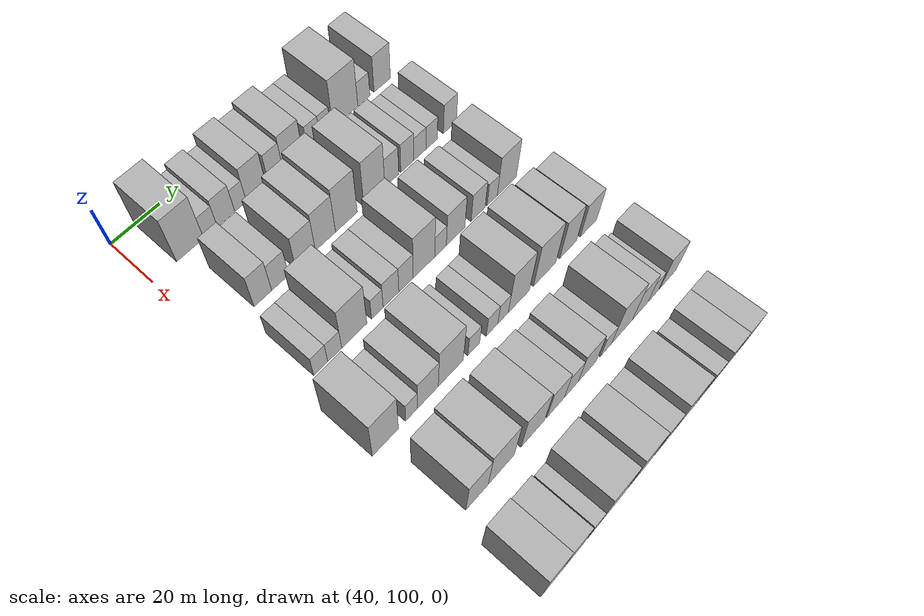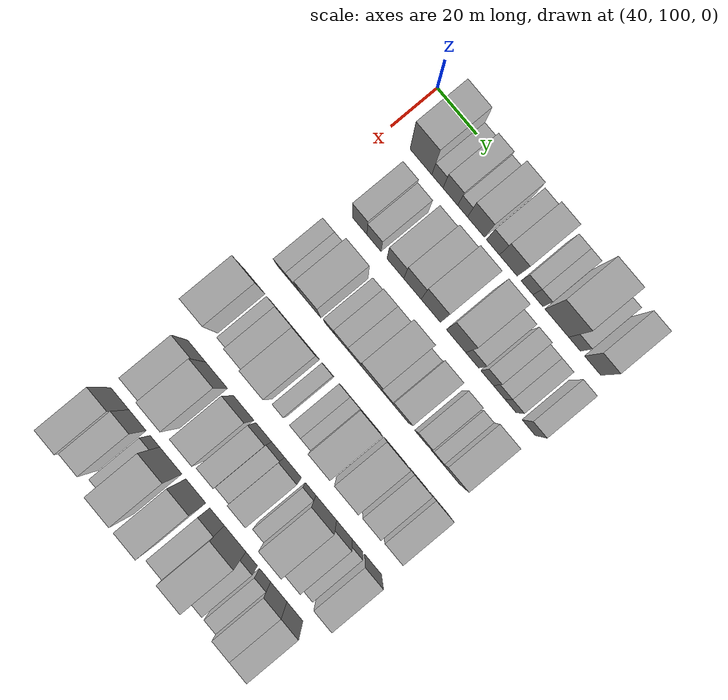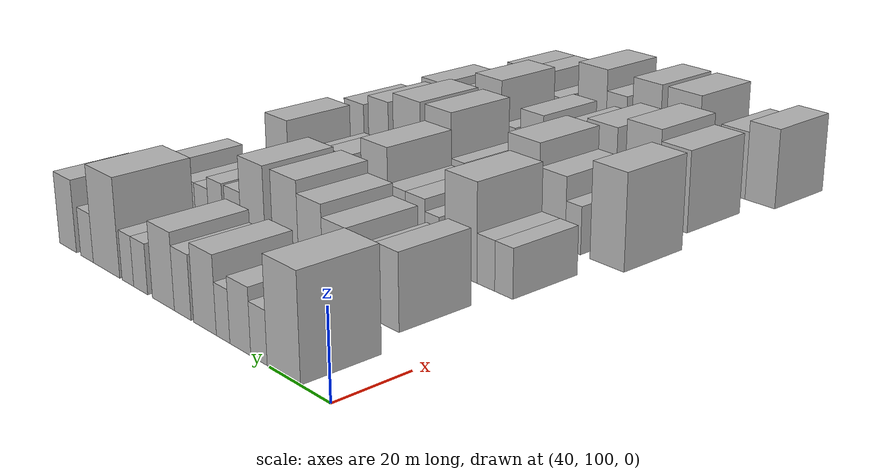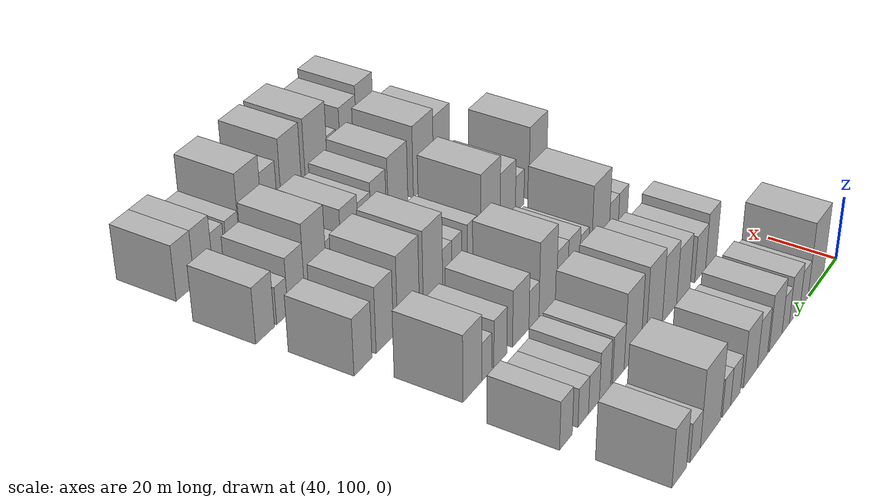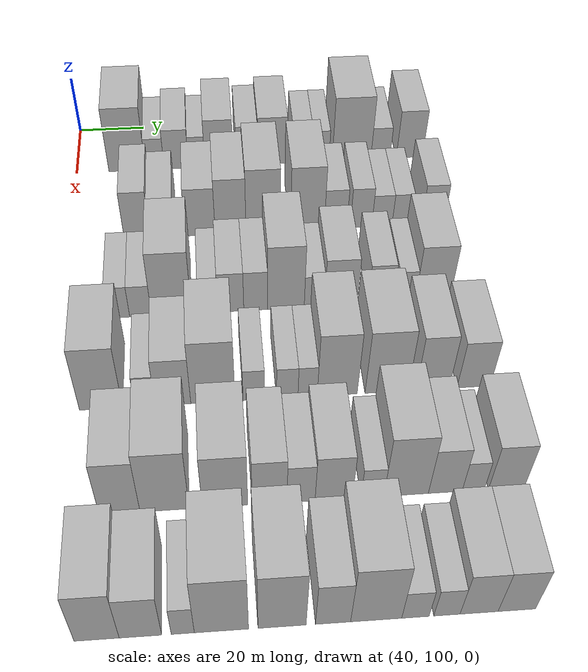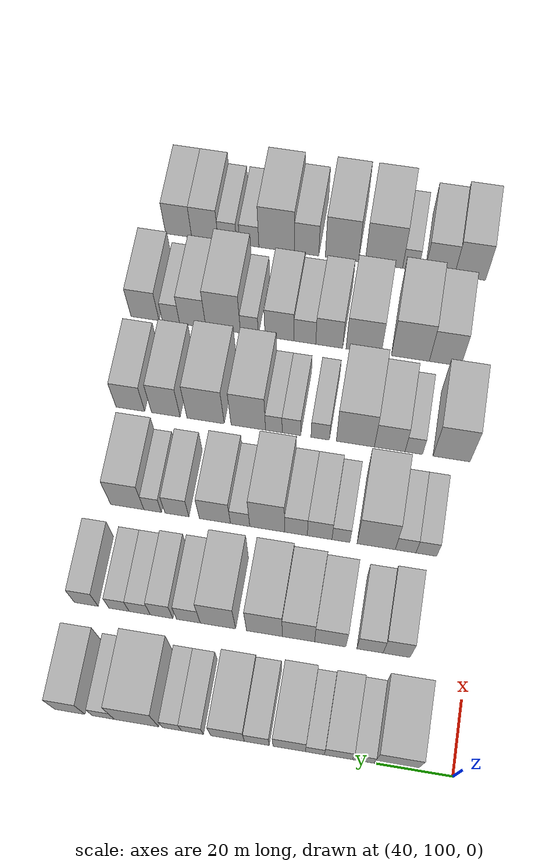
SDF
<sdf version="1.6">
 <world name="default">
  <model name="building_71">
   <static>1</static>
   <pose>50.0000 115.2346 0 0.000000 0.000000 0.000000</pose>
   <link name="link">
    <pose>0 0 12.00 0 0 0</pose>
    <collision name="collision"><geometry><box><size>20.0000 11.1238 24.0000</size></box></geometry></collision>
    <visual name="visual">
     <cast_shadows>0</cast_shadows>
     <geometry><box><size>20.0000 11.1238 24.0000</size></box></geometry>
     <material>
      <script>
       <uri>model://HANNAS_wall/materials/scripts</uri>
       <uri>model://HANNAS_wall/materials/textures</uri>
       <name>vrc/HANNAS_wall</name>
      </script>
     </material>
    </visual>
   </link>
  </model>
  <model name="building_72">
   <static>1</static>
   <pose>50.0000 123.6524 0 0.000000 0.000000 0.000000</pose>
   <link name="link">
    <pose>0 0 6.00 0 0 0</pose>
    <collision name="collision"><geometry><box><size>20.0000 5.7118 12.0000</size></box></geometry></collision>
    <visual name="visual">
     <cast_shadows>0</cast_shadows>
     <geometry><box><size>20.0000 5.7118 12.0000</size></box></geometry>
     <material>
      <script>
       <uri>model://HANNAS_wall/materials/scripts</uri>
       <uri>model://HANNAS_wall/materials/textures</uri>
       <name>vrc/HANNAS_wall</name>
      </script>
     </material>
    </visual>
   </link>
  </model>
  <model name="building_73">
   <static>1</static>
   <pose>50.0000 130.2465 0 0.000000 0.000000 0.000000</pose>
   <link name="link">
    <pose>0 0 7.50 0 0 0</pose>
    <collision name="collision"><geometry><box><size>20.0000 7.4764 15.0000</size></box></geometry></collision>
    <visual name="visual">
     <cast_shadows>0</cast_shadows>
     <geometry><box><size>20.0000 7.4764 15.0000</size></box></geometry>
     <material>
      <script>
       <uri>model://HANNAS_wall/materials/scripts</uri>
       <uri>model://HANNAS_wall/materials/textures</uri>
       <name>vrc/HANNAS_wall</name>
      </script>
     </material>
    </visual>
   </link>
  </model>
  <model name="building_74">
   <static>1</static>
   <pose>50.0000 136.4829 0 0.000000 0.000000 0.000000</pose>
   <link name="link">
    <pose>0 0 6.00 0 0 0</pose>
    <collision name="collision"><geometry><box><size>20.0000 4.9964 12.0000</size></box></geometry></collision>
    <visual name="visual">
     <cast_shadows>0</cast_shadows>
     <geometry><box><size>20.0000 4.9964 12.0000</size></box></geometry>
     <material>
      <script>
       <uri>model://HANNAS_wall/materials/scripts</uri>
       <uri>model://HANNAS_wall/materials/textures</uri>
       <name>vrc/HANNAS_wall</name>
      </script>
     </material>
    </visual>
   </link>
  </model>
  <model name="building_75">
   <static>1</static>
   <pose>50.0000 143.2983 0 0.000000 0.000000 0.000000</pose>
   <link name="link">
    <pose>0 0 9.00 0 0 0</pose>
    <collision name="collision"><geometry><box><size>20.0000 8.6344 18.0000</size></box></geometry></collision>
    <visual name="visual">
     <cast_shadows>0</cast_shadows>
     <geometry><box><size>20.0000 8.6344 18.0000</size></box></geometry>
     <material>
      <script>
       <uri>model://HANNAS_wall/materials/scripts</uri>
       <uri>model://HANNAS_wall/materials/textures</uri>
       <name>vrc/HANNAS_wall</name>
      </script>
     </material>
    </visual>
   </link>
  </model>
  <model name="building_76">
   <static>1</static>
   <pose>50.0000 151.9148 0 0.000000 0.000000 0.000000</pose>
   <link name="link">
    <pose>0 0 7.50 0 0 0</pose>
    <collision name="collision"><geometry><box><size>20.0000 6.5987 15.0000</size></box></geometry></collision>
    <visual name="visual">
     <cast_shadows>0</cast_shadows>
     <geometry><box><size>20.0000 6.5987 15.0000</size></box></geometry>
     <material>
      <script>
       <uri>model://HANNAS_wall/materials/scripts</uri>
       <uri>model://HANNAS_wall/materials/textures</uri>
       <name>vrc/HANNAS_wall</name>
      </script>
     </material>
    </visual>
   </link>
  </model>
  <model name="building_77">
   <static>1</static>
   <pose>50.0000 159.7139 0 0.000000 0.000000 0.000000</pose>
   <link name="link">
    <pose>0 0 9.00 0 0 0</pose>
    <collision name="collision"><geometry><box><size>20.0000 8.9995 18.0000</size></box></geometry></collision>
    <visual name="visual">
     <cast_shadows>0</cast_shadows>
     <geometry><box><size>20.0000 8.9995 18.0000</size></box></geometry>
     <material>
      <script>
       <uri>model://HANNAS_wall/materials/scripts</uri>
       <uri>model://HANNAS_wall/materials/textures</uri>
       <name>vrc/HANNAS_wall</name>
      </script>
     </material>
    </visual>
   </link>
  </model>
  <model name="building_78">
   <static>1</static>
   <pose>50.0000 169.1729 0 0.000000 0.000000 0.000000</pose>
   <link name="link">
    <pose>0 0 6.00 0 0 0</pose>
    <collision name="collision"><geometry><box><size>20.0000 5.9184 12.0000</size></box></geometry></collision>
    <visual name="visual">
     <cast_shadows>0</cast_shadows>
     <geometry><box><size>20.0000 5.9184 12.0000</size></box></geometry>
     <material>
      <script>
       <uri>model://HANNAS_wall/materials/scripts</uri>
       <uri>model://HANNAS_wall/materials/textures</uri>
       <name>vrc/HANNAS_wall</name>
      </script>
     </material>
    </visual>
   </link>
  </model>
  <model name="building_79">
   <static>1</static>
   <pose>50.0000 174.6811 0 0.000000 0.000000 0.000000</pose>
   <link name="link">
    <pose>0 0 6.00 0 0 0</pose>
    <collision name="collision"><geometry><box><size>20.0000 5.0979 12.0000</size></box></geometry></collision>
    <visual name="visual">
     <cast_shadows>0</cast_shadows>
     <geometry><box><size>20.0000 5.0979 12.0000</size></box></geometry>
     <material>
      <script>
       <uri>model://HANNAS_wall/materials/scripts</uri>
       <uri>model://HANNAS_wall/materials/textures</uri>
       <name>vrc/HANNAS_wall</name>
      </script>
     </material>
    </visual>
   </link>
  </model>
  <model name="building_80">
   <static>1</static>
   <pose>50.0000 184.2239 0 0.000000 0.000000 0.000000</pose>
   <link name="link">
    <pose>0 0 12.00 0 0 0</pose>
    <collision name="collision"><geometry><box><size>20.0000 11.9878 24.0000</size></box></geometry></collision>
    <visual name="visual">
     <cast_shadows>0</cast_shadows>
     <geometry><box><size>20.0000 11.9878 24.0000</size></box></geometry>
     <material>
      <script>
       <uri>model://HANNAS_wall/materials/scripts</uri>
       <uri>model://HANNAS_wall/materials/textures</uri>
       <name>vrc/HANNAS_wall</name>
      </script>
     </material>
    </visual>
   </link>
  </model>
  <model name="building_81">
   <static>1</static>
   <pose>50.0000 193.1954 0 0.000000 0.000000 0.000000</pose>
   <link name="link">
    <pose>0 0 6.00 0 0 0</pose>
    <collision name="collision"><geometry><box><size>20.0000 5.9552 12.0000</size></box></geometry></collision>
    <visual name="visual">
     <cast_shadows>0</cast_shadows>
     <geometry><box><size>20.0000 5.9552 12.0000</size></box></geometry>
     <material>
      <script>
       <uri>model://HANNAS_wall/materials/scripts</uri>
       <uri>model://HANNAS_wall/materials/textures</uri>
       <name>vrc/HANNAS_wall</name>
      </script>
     </material>
    </visual>
   </link>
  </model>
  <model name="building_82">
   <static>1</static>
   <pose>50.0000 202.2636 0 0.000000 0.000000 0.000000</pose>
   <link name="link">
    <pose>0 0 9.00 0 0 0</pose>
    <collision name="collision"><geometry><box><size>20.0000 8.1812 18.0000</size></box></geometry></collision>
    <visual name="visual">
     <cast_shadows>0</cast_shadows>
     <geometry><box><size>20.0000 8.1812 18.0000</size></box></geometry>
     <material>
      <script>
       <uri>model://HANNAS_wall/materials/scripts</uri>
       <uri>model://HANNAS_wall/materials/textures</uri>
       <name>vrc/HANNAS_wall</name>
      </script>
     </material>
    </visual>
   </link>
  </model>
  <model name="building_178">
   <static>1</static>
   <pose>79.0000 118.7111 0 0.000000 0.000000 0.000000</pose>
   <link name="link">
    <pose>0 0 9.00 0 0 0</pose>
    <collision name="collision"><geometry><box><size>20.0000 7.3330 18.0000</size></box></geometry></collision>
    <visual name="visual">
     <cast_shadows>0</cast_shadows>
     <geometry><box><size>20.0000 7.3330 18.0000</size></box></geometry>
     <material>
      <script>
       <uri>model://HANNAS_wall/materials/scripts</uri>
       <uri>model://HANNAS_wall/materials/textures</uri>
       <name>vrc/HANNAS_wall</name>
      </script>
     </material>
    </visual>
   </link>
  </model>
  <model name="building_179">
   <static>1</static>
   <pose>79.0000 125.9620 0 0.000000 0.000000 0.000000</pose>
   <link name="link">
    <pose>0 0 7.50 0 0 0</pose>
    <collision name="collision"><geometry><box><size>20.0000 7.1687 15.0000</size></box></geometry></collision>
    <visual name="visual">
     <cast_shadows>0</cast_shadows>
     <geometry><box><size>20.0000 7.1687 15.0000</size></box></geometry>
     <material>
      <script>
       <uri>model://HANNAS_wall/materials/scripts</uri>
       <uri>model://HANNAS_wall/materials/textures</uri>
       <name>vrc/HANNAS_wall</name>
      </script>
     </material>
    </visual>
   </link>
  </model>
  <model name="building_180">
   <static>1</static>
   <pose>79.0000 136.8230 0 0.000000 0.000000 0.000000</pose>
   <link name="link">
    <pose>0 0 9.00 0 0 0</pose>
    <collision name="collision"><geometry><box><size>20.0000 8.5534 18.0000</size></box></geometry></collision>
    <visual name="visual">
     <cast_shadows>0</cast_shadows>
     <geometry><box><size>20.0000 8.5534 18.0000</size></box></geometry>
     <material>
      <script>
       <uri>model://HANNAS_wall/materials/scripts</uri>
       <uri>model://HANNAS_wall/materials/textures</uri>
       <name>vrc/HANNAS_wall</name>
      </script>
     </material>
    </visual>
   </link>
  </model>
  <model name="building_181">
   <static>1</static>
   <pose>79.0000 145.5292 0 0.000000 0.000000 0.000000</pose>
   <link name="link">
    <pose>0 0 10.50 0 0 0</pose>
    <collision name="collision"><geometry><box><size>20.0000 8.8588 21.0000</size></box></geometry></collision>
    <visual name="visual">
     <cast_shadows>0</cast_shadows>
     <geometry><box><size>20.0000 8.8588 21.0000</size></box></geometry>
     <material>
      <script>
       <uri>model://HANNAS_wall/materials/scripts</uri>
       <uri>model://HANNAS_wall/materials/textures</uri>
       <name>vrc/HANNAS_wall</name>
      </script>
     </material>
    </visual>
   </link>
  </model>
  <model name="building_182">
   <static>1</static>
   <pose>79.0000 154.8758 0 0.000000 0.000000 0.000000</pose>
   <link name="link">
    <pose>0 0 12.00 0 0 0</pose>
    <collision name="collision"><geometry><box><size>20.0000 9.8344 24.0000</size></box></geometry></collision>
    <visual name="visual">
     <cast_shadows>0</cast_shadows>
     <geometry><box><size>20.0000 9.8344 24.0000</size></box></geometry>
     <material>
      <script>
       <uri>model://HANNAS_wall/materials/scripts</uri>
       <uri>model://HANNAS_wall/materials/textures</uri>
       <name>vrc/HANNAS_wall</name>
      </script>
     </material>
    </visual>
   </link>
  </model>
  <model name="building_183">
   <static>1</static>
   <pose>79.0000 167.6782 0 0.000000 0.000000 0.000000</pose>
   <link name="link">
    <pose>0 0 12.00 0 0 0</pose>
    <collision name="collision"><geometry><box><size>20.0000 9.7705 24.0000</size></box></geometry></collision>
    <visual name="visual">
     <cast_shadows>0</cast_shadows>
     <geometry><box><size>20.0000 9.7705 24.0000</size></box></geometry>
     <material>
      <script>
       <uri>model://HANNAS_wall/materials/scripts</uri>
       <uri>model://HANNAS_wall/materials/textures</uri>
       <name>vrc/HANNAS_wall</name>
      </script>
     </material>
    </visual>
   </link>
  </model>
  <model name="building_184">
   <static>1</static>
   <pose>79.0000 175.8561 0 0.000000 0.000000 0.000000</pose>
   <link name="link">
    <pose>0 0 7.50 0 0 0</pose>
    <collision name="collision"><geometry><box><size>20.0000 6.5852 15.0000</size></box></geometry></collision>
    <visual name="visual">
     <cast_shadows>0</cast_shadows>
     <geometry><box><size>20.0000 6.5852 15.0000</size></box></geometry>
     <material>
      <script>
       <uri>model://HANNAS_wall/materials/scripts</uri>
       <uri>model://HANNAS_wall/materials/textures</uri>
       <name>vrc/HANNAS_wall</name>
      </script>
     </material>
    </visual>
   </link>
  </model>
  <model name="building_185">
   <static>1</static>
   <pose>79.0000 183.2838 0 0.000000 0.000000 0.000000</pose>
   <link name="link">
    <pose>0 0 7.50 0 0 0</pose>
    <collision name="collision"><geometry><box><size>20.0000 6.2702 15.0000</size></box></geometry></collision>
    <visual name="visual">
     <cast_shadows>0</cast_shadows>
     <geometry><box><size>20.0000 6.2702 15.0000</size></box></geometry>
     <material>
      <script>
       <uri>model://HANNAS_wall/materials/scripts</uri>
       <uri>model://HANNAS_wall/materials/textures</uri>
       <name>vrc/HANNAS_wall</name>
      </script>
     </material>
    </visual>
   </link>
  </model>
  <model name="building_186">
   <static>1</static>
   <pose>79.0000 189.3779 0 0.000000 0.000000 0.000000</pose>
   <link name="link">
    <pose>0 0 6.00 0 0 0</pose>
    <collision name="collision"><geometry><box><size>20.0000 5.9179 12.0000</size></box></geometry></collision>
    <visual name="visual">
     <cast_shadows>0</cast_shadows>
     <geometry><box><size>20.0000 5.9179 12.0000</size></box></geometry>
     <material>
      <script>
       <uri>model://HANNAS_wall/materials/scripts</uri>
       <uri>model://HANNAS_wall/materials/textures</uri>
       <name>vrc/HANNAS_wall</name>
      </script>
     </material>
    </visual>
   </link>
  </model>
  <model name="building_187">
   <static>1</static>
   <pose>79.0000 195.1609 0 0.000000 0.000000 0.000000</pose>
   <link name="link">
    <pose>0 0 6.00 0 0 0</pose>
    <collision name="collision"><geometry><box><size>20.0000 5.6483 12.0000</size></box></geometry></collision>
    <visual name="visual">
     <cast_shadows>0</cast_shadows>
     <geometry><box><size>20.0000 5.6483 12.0000</size></box></geometry>
     <material>
      <script>
       <uri>model://HANNAS_wall/materials/scripts</uri>
       <uri>model://HANNAS_wall/materials/textures</uri>
       <name>vrc/HANNAS_wall</name>
      </script>
     </material>
    </visual>
   </link>
  </model>
  <model name="building_188">
   <static>1</static>
   <pose>79.0000 204.2913 0 0.000000 0.000000 0.000000</pose>
   <link name="link">
    <pose>0 0 7.50 0 0 0</pose>
    <collision name="collision"><geometry><box><size>20.0000 6.6125 15.0000</size></box></geometry></collision>
    <visual name="visual">
     <cast_shadows>0</cast_shadows>
     <geometry><box><size>20.0000 6.6125 15.0000</size></box></geometry>
     <material>
      <script>
       <uri>model://HANNAS_wall/materials/scripts</uri>
       <uri>model://HANNAS_wall/materials/textures</uri>
       <name>vrc/HANNAS_wall</name>
      </script>
     </material>
    </visual>
   </link>
  </model>
  <model name="building_295">
   <static>1</static>
   <pose>108.0000 114.3068 0 0.000000 0.000000 0.000000</pose>
   <link name="link">
    <pose>0 0 6.00 0 0 0</pose>
    <collision name="collision"><geometry><box><size>20.0000 5.7874 12.0000</size></box></geometry></collision>
    <visual name="visual">
     <cast_shadows>0</cast_shadows>
     <geometry><box><size>20.0000 5.7874 12.0000</size></box></geometry>
     <material>
      <script>
       <uri>model://HANNAS_wall/materials/scripts</uri>
       <uri>model://HANNAS_wall/materials/textures</uri>
       <name>vrc/HANNAS_wall</name>
      </script>
     </material>
    </visual>
   </link>
  </model>
  <model name="building_296">
   <static>1</static>
   <pose>108.0000 120.0987 0 0.000000 0.000000 0.000000</pose>
   <link name="link">
    <pose>0 0 6.00 0 0 0</pose>
    <collision name="collision"><geometry><box><size>20.0000 5.7964 12.0000</size></box></geometry></collision>
    <visual name="visual">
     <cast_shadows>0</cast_shadows>
     <geometry><box><size>20.0000 5.7964 12.0000</size></box></geometry>
     <material>
      <script>
       <uri>model://HANNAS_wall/materials/scripts</uri>
       <uri>model://HANNAS_wall/materials/textures</uri>
       <name>vrc/HANNAS_wall</name>
      </script>
     </material>
    </visual>
   </link>
  </model>
  <model name="building_297">
   <static>1</static>
   <pose>108.0000 128.3586 0 0.000000 0.000000 0.000000</pose>
   <link name="link">
    <pose>0 0 12.00 0 0 0</pose>
    <collision name="collision"><geometry><box><size>20.0000 10.7236 24.0000</size></box></geometry></collision>
    <visual name="visual">
     <cast_shadows>0</cast_shadows>
     <geometry><box><size>20.0000 10.7236 24.0000</size></box></geometry>
     <material>
      <script>
       <uri>model://HANNAS_wall/materials/scripts</uri>
       <uri>model://HANNAS_wall/materials/textures</uri>
       <name>vrc/HANNAS_wall</name>
      </script>
     </material>
    </visual>
   </link>
  </model>
  <model name="building_298">
   <static>1</static>
   <pose>108.0000 138.2503 0 0.000000 0.000000 0.000000</pose>
   <link name="link">
    <pose>0 0 6.00 0 0 0</pose>
    <collision name="collision"><geometry><box><size>20.0000 5.0598 12.0000</size></box></geometry></collision>
    <visual name="visual">
     <cast_shadows>0</cast_shadows>
     <geometry><box><size>20.0000 5.0598 12.0000</size></box></geometry>
     <material>
      <script>
       <uri>model://HANNAS_wall/materials/scripts</uri>
       <uri>model://HANNAS_wall/materials/textures</uri>
       <name>vrc/HANNAS_wall</name>
      </script>
     </material>
    </visual>
   </link>
  </model>
  <model name="building_299">
   <static>1</static>
   <pose>108.0000 144.2522 0 0.000000 0.000000 0.000000</pose>
   <link name="link">
    <pose>0 0 7.50 0 0 0</pose>
    <collision name="collision"><geometry><box><size>20.0000 6.9440 15.0000</size></box></geometry></collision>
    <visual name="visual">
     <cast_shadows>0</cast_shadows>
     <geometry><box><size>20.0000 6.9440 15.0000</size></box></geometry>
     <material>
      <script>
       <uri>model://HANNAS_wall/materials/scripts</uri>
       <uri>model://HANNAS_wall/materials/textures</uri>
       <name>vrc/HANNAS_wall</name>
      </script>
     </material>
    </visual>
   </link>
  </model>
  <model name="building_300">
   <static>1</static>
   <pose>108.0000 150.9360 0 0.000000 0.000000 0.000000</pose>
   <link name="link">
    <pose>0 0 7.50 0 0 0</pose>
    <collision name="collision"><geometry><box><size>20.0000 6.4236 15.0000</size></box></geometry></collision>
    <visual name="visual">
     <cast_shadows>0</cast_shadows>
     <geometry><box><size>20.0000 6.4236 15.0000</size></box></geometry>
     <material>
      <script>
       <uri>model://HANNAS_wall/materials/scripts</uri>
       <uri>model://HANNAS_wall/materials/textures</uri>
       <name>vrc/HANNAS_wall</name>
      </script>
     </material>
    </visual>
   </link>
  </model>
  <model name="building_301">
   <static>1</static>
   <pose>108.0000 159.0804 0 0.000000 0.000000 0.000000</pose>
   <link name="link">
    <pose>0 0 12.00 0 0 0</pose>
    <collision name="collision"><geometry><box><size>20.0000 9.8653 24.0000</size></box></geometry></collision>
    <visual name="visual">
     <cast_shadows>0</cast_shadows>
     <geometry><box><size>20.0000 9.8653 24.0000</size></box></geometry>
     <material>
      <script>
       <uri>model://HANNAS_wall/materials/scripts</uri>
       <uri>model://HANNAS_wall/materials/textures</uri>
       <name>vrc/HANNAS_wall</name>
      </script>
     </material>
    </visual>
   </link>
  </model>
  <model name="building_302">
   <static>1</static>
   <pose>108.0000 166.7447 0 0.000000 0.000000 0.000000</pose>
   <link name="link">
    <pose>0 0 6.00 0 0 0</pose>
    <collision name="collision"><geometry><box><size>20.0000 5.4632 12.0000</size></box></geometry></collision>
    <visual name="visual">
     <cast_shadows>0</cast_shadows>
     <geometry><box><size>20.0000 5.4632 12.0000</size></box></geometry>
     <material>
      <script>
       <uri>model://HANNAS_wall/materials/scripts</uri>
       <uri>model://HANNAS_wall/materials/textures</uri>
       <name>vrc/HANNAS_wall</name>
      </script>
     </material>
    </visual>
   </link>
  </model>
  <model name="building_303">
   <static>1</static>
   <pose>108.0000 173.8966 0 0.000000 0.000000 0.000000</pose>
   <link name="link">
    <pose>0 0 9.00 0 0 0</pose>
    <collision name="collision"><geometry><box><size>20.0000 8.8406 18.0000</size></box></geometry></collision>
    <visual name="visual">
     <cast_shadows>0</cast_shadows>
     <geometry><box><size>20.0000 8.8406 18.0000</size></box></geometry>
     <material>
      <script>
       <uri>model://HANNAS_wall/materials/scripts</uri>
       <uri>model://HANNAS_wall/materials/textures</uri>
       <name>vrc/HANNAS_wall</name>
      </script>
     </material>
    </visual>
   </link>
  </model>
  <model name="building_304">
   <static>1</static>
   <pose>108.0000 184.7393 0 0.000000 0.000000 0.000000</pose>
   <link name="link">
    <pose>0 0 7.50 0 0 0</pose>
    <collision name="collision"><geometry><box><size>20.0000 6.8448 15.0000</size></box></geometry></collision>
    <visual name="visual">
     <cast_shadows>0</cast_shadows>
     <geometry><box><size>20.0000 6.8448 15.0000</size></box></geometry>
     <material>
      <script>
       <uri>model://HANNAS_wall/materials/scripts</uri>
       <uri>model://HANNAS_wall/materials/textures</uri>
       <name>vrc/HANNAS_wall</name>
      </script>
     </material>
    </visual>
   </link>
  </model>
  <model name="building_305">
   <static>1</static>
   <pose>108.0000 191.6617 0 0.000000 0.000000 0.000000</pose>
   <link name="link">
    <pose>0 0 6.00 0 0 0</pose>
    <collision name="collision"><geometry><box><size>20.0000 5.0000 12.0000</size></box></geometry></collision>
    <visual name="visual">
     <cast_shadows>0</cast_shadows>
     <geometry><box><size>20.0000 5.0000 12.0000</size></box></geometry>
     <material>
      <script>
       <uri>model://HANNAS_wall/materials/scripts</uri>
       <uri>model://HANNAS_wall/materials/textures</uri>
       <name>vrc/HANNAS_wall</name>
      </script>
     </material>
    </visual>
   </link>
  </model>
  <model name="building_306">
   <static>1</static>
   <pose>108.0000 198.9363 0 0.000000 0.000000 0.000000</pose>
   <link name="link">
    <pose>0 0 10.50 0 0 0</pose>
    <collision name="collision"><geometry><box><size>20.0000 9.5492 21.0000</size></box></geometry></collision>
    <visual name="visual">
     <cast_shadows>0</cast_shadows>
     <geometry><box><size>20.0000 9.5492 21.0000</size></box></geometry>
     <material>
      <script>
       <uri>model://HANNAS_wall/materials/scripts</uri>
       <uri>model://HANNAS_wall/materials/textures</uri>
       <name>vrc/HANNAS_wall</name>
      </script>
     </material>
    </visual>
   </link>
  </model>
  <model name="building_406">
   <static>1</static>
   <pose>137.0000 110.7333 0 0.000000 0.000000 0.000000</pose>
   <link name="link">
    <pose>0 0 12.00 0 0 0</pose>
    <collision name="collision"><geometry><box><size>20.0000 10.6427 24.0000</size></box></geometry></collision>
    <visual name="visual">
     <cast_shadows>0</cast_shadows>
     <geometry><box><size>20.0000 10.6427 24.0000</size></box></geometry>
     <material>
      <script>
       <uri>model://HANNAS_wall/materials/scripts</uri>
       <uri>model://HANNAS_wall/materials/textures</uri>
       <name>vrc/HANNAS_wall</name>
      </script>
     </material>
    </visual>
   </link>
  </model>
  <model name="building_407">
   <static>1</static>
   <pose>137.0000 121.5689 0 0.000000 0.000000 0.000000</pose>
   <link name="link">
    <pose>0 0 6.00 0 0 0</pose>
    <collision name="collision"><geometry><box><size>20.0000 5.0284 12.0000</size></box></geometry></collision>
    <visual name="visual">
     <cast_shadows>0</cast_shadows>
     <geometry><box><size>20.0000 5.0284 12.0000</size></box></geometry>
     <material>
      <script>
       <uri>model://HANNAS_wall/materials/scripts</uri>
       <uri>model://HANNAS_wall/materials/textures</uri>
       <name>vrc/HANNAS_wall</name>
      </script>
     </material>
    </visual>
   </link>
  </model>
  <model name="building_408">
   <static>1</static>
   <pose>137.0000 128.5110 0 0.000000 0.000000 0.000000</pose>
   <link name="link">
    <pose>0 0 9.00 0 0 0</pose>
    <collision name="collision"><geometry><box><size>20.0000 8.8559 18.0000</size></box></geometry></collision>
    <visual name="visual">
     <cast_shadows>0</cast_shadows>
     <geometry><box><size>20.0000 8.8559 18.0000</size></box></geometry>
     <material>
      <script>
       <uri>model://HANNAS_wall/materials/scripts</uri>
       <uri>model://HANNAS_wall/materials/textures</uri>
       <name>vrc/HANNAS_wall</name>
      </script>
     </material>
    </visual>
   </link>
  </model>
  <model name="building_409">
   <static>1</static>
   <pose>137.0000 138.4394 0 0.000000 0.000000 0.000000</pose>
   <link name="link">
    <pose>0 0 12.00 0 0 0</pose>
    <collision name="collision"><geometry><box><size>20.0000 11.0007 24.0000</size></box></geometry></collision>
    <visual name="visual">
     <cast_shadows>0</cast_shadows>
     <geometry><box><size>20.0000 11.0007 24.0000</size></box></geometry>
     <material>
      <script>
       <uri>model://HANNAS_wall/materials/scripts</uri>
       <uri>model://HANNAS_wall/materials/textures</uri>
       <name>vrc/HANNAS_wall</name>
      </script>
     </material>
    </visual>
   </link>
  </model>
  <model name="building_410">
   <static>1</static>
   <pose>137.0000 148.6167 0 0.000000 0.000000 0.000000</pose>
   <link name="link">
    <pose>0 0 6.00 0 0 0</pose>
    <collision name="collision"><geometry><box><size>20.0000 5.3539 12.0000</size></box></geometry></collision>
    <visual name="visual">
     <cast_shadows>0</cast_shadows>
     <geometry><box><size>20.0000 5.3539 12.0000</size></box></geometry>
     <material>
      <script>
       <uri>model://HANNAS_wall/materials/scripts</uri>
       <uri>model://HANNAS_wall/materials/textures</uri>
       <name>vrc/HANNAS_wall</name>
      </script>
     </material>
    </visual>
   </link>
  </model>
  <model name="building_411">
   <static>1</static>
   <pose>137.0000 156.9832 0 0.000000 0.000000 0.000000</pose>
   <link name="link">
    <pose>0 0 6.00 0 0 0</pose>
    <collision name="collision"><geometry><box><size>20.0000 5.3791 12.0000</size></box></geometry></collision>
    <visual name="visual">
     <cast_shadows>0</cast_shadows>
     <geometry><box><size>20.0000 5.3791 12.0000</size></box></geometry>
     <material>
      <script>
       <uri>model://HANNAS_wall/materials/scripts</uri>
       <uri>model://HANNAS_wall/materials/textures</uri>
       <name>vrc/HANNAS_wall</name>
      </script>
     </material>
    </visual>
   </link>
  </model>
  <model name="building_412">
   <static>1</static>
   <pose>137.0000 162.0915 0 0.000000 0.000000 0.000000</pose>
   <link name="link">
    <pose>0 0 6.00 0 0 0</pose>
    <collision name="collision"><geometry><box><size>20.0000 4.8375 12.0000</size></box></geometry></collision>
    <visual name="visual">
     <cast_shadows>0</cast_shadows>
     <geometry><box><size>20.0000 4.8375 12.0000</size></box></geometry>
     <material>
      <script>
       <uri>model://HANNAS_wall/materials/scripts</uri>
       <uri>model://HANNAS_wall/materials/textures</uri>
       <name>vrc/HANNAS_wall</name>
      </script>
     </material>
    </visual>
   </link>
  </model>
  <model name="building_413">
   <static>1</static>
   <pose>137.0000 169.5383 0 0.000000 0.000000 0.000000</pose>
   <link name="link">
    <pose>0 0 12.00 0 0 0</pose>
    <collision name="collision"><geometry><box><size>20.0000 10.0563 24.0000</size></box></geometry></collision>
    <visual name="visual">
     <cast_shadows>0</cast_shadows>
     <geometry><box><size>20.0000 10.0563 24.0000</size></box></geometry>
     <material>
      <script>
       <uri>model://HANNAS_wall/materials/scripts</uri>
       <uri>model://HANNAS_wall/materials/textures</uri>
       <name>vrc/HANNAS_wall</name>
      </script>
     </material>
    </visual>
   </link>
  </model>
  <model name="building_414">
   <static>1</static>
   <pose>137.0000 182.0266 0 0.000000 0.000000 0.000000</pose>
   <link name="link">
    <pose>0 0 12.00 0 0 0</pose>
    <collision name="collision"><geometry><box><size>20.0000 10.9203 24.0000</size></box></geometry></collision>
    <visual name="visual">
     <cast_shadows>0</cast_shadows>
     <geometry><box><size>20.0000 10.9203 24.0000</size></box></geometry>
     <material>
      <script>
       <uri>model://HANNAS_wall/materials/scripts</uri>
       <uri>model://HANNAS_wall/materials/textures</uri>
       <name>vrc/HANNAS_wall</name>
      </script>
     </material>
    </visual>
   </link>
  </model>
  <model name="building_415">
   <static>1</static>
   <pose>137.0000 193.6933 0 0.000000 0.000000 0.000000</pose>
   <link name="link">
    <pose>0 0 10.50 0 0 0</pose>
    <collision name="collision"><geometry><box><size>20.0000 8.4132 21.0000</size></box></geometry></collision>
    <visual name="visual">
     <cast_shadows>0</cast_shadows>
     <geometry><box><size>20.0000 8.4132 21.0000</size></box></geometry>
     <material>
      <script>
       <uri>model://HANNAS_wall/materials/scripts</uri>
       <uri>model://HANNAS_wall/materials/textures</uri>
       <name>vrc/HANNAS_wall</name>
      </script>
     </material>
    </visual>
   </link>
  </model>
  <model name="building_416">
   <static>1</static>
   <pose>137.0000 204.1299 0 0.000000 0.000000 0.000000</pose>
   <link name="link">
    <pose>0 0 9.00 0 0 0</pose>
    <collision name="collision"><geometry><box><size>20.0000 8.4598 18.0000</size></box></geometry></collision>
    <visual name="visual">
     <cast_shadows>0</cast_shadows>
     <geometry><box><size>20.0000 8.4598 18.0000</size></box></geometry>
     <material>
      <script>
       <uri>model://HANNAS_wall/materials/scripts</uri>
       <uri>model://HANNAS_wall/materials/textures</uri>
       <name>vrc/HANNAS_wall</name>
      </script>
     </material>
    </visual>
   </link>
  </model>
  <model name="building_524">
   <static>1</static>
   <pose>166.0000 116.0881 0 0.000000 0.000000 0.000000</pose>
   <link name="link">
    <pose>0 0 10.50 0 0 0</pose>
    <collision name="collision"><geometry><box><size>20.0000 9.3150 21.0000</size></box></geometry></collision>
    <visual name="visual">
     <cast_shadows>0</cast_shadows>
     <geometry><box><size>20.0000 9.3150 21.0000</size></box></geometry>
     <material>
      <script>
       <uri>model://HANNAS_wall/materials/scripts</uri>
       <uri>model://HANNAS_wall/materials/textures</uri>
       <name>vrc/HANNAS_wall</name>
      </script>
     </material>
    </visual>
   </link>
  </model>
  <model name="building_525">
   <static>1</static>
   <pose>166.0000 126.3664 0 0.000000 0.000000 0.000000</pose>
   <link name="link">
    <pose>0 0 12.00 0 0 0</pose>
    <collision name="collision"><geometry><box><size>20.0000 11.2417 24.0000</size></box></geometry></collision>
    <visual name="visual">
     <cast_shadows>0</cast_shadows>
     <geometry><box><size>20.0000 11.2417 24.0000</size></box></geometry>
     <material>
      <script>
       <uri>model://HANNAS_wall/materials/scripts</uri>
       <uri>model://HANNAS_wall/materials/textures</uri>
       <name>vrc/HANNAS_wall</name>
      </script>
     </material>
    </visual>
   </link>
  </model>
  <model name="building_526">
   <static>1</static>
   <pose>166.0000 140.2206 0 0.000000 0.000000 0.000000</pose>
   <link name="link">
    <pose>0 0 10.50 0 0 0</pose>
    <collision name="collision"><geometry><box><size>20.0000 10.4668 21.0000</size></box></geometry></collision>
    <visual name="visual">
     <cast_shadows>0</cast_shadows>
     <geometry><box><size>20.0000 10.4668 21.0000</size></box></geometry>
     <material>
      <script>
       <uri>model://HANNAS_wall/materials/scripts</uri>
       <uri>model://HANNAS_wall/materials/textures</uri>
       <name>vrc/HANNAS_wall</name>
      </script>
     </material>
    </visual>
   </link>
  </model>
  <model name="building_527">
   <static>1</static>
   <pose>166.0000 150.4628 0 0.000000 0.000000 0.000000</pose>
   <link name="link">
    <pose>0 0 9.00 0 0 0</pose>
    <collision name="collision"><geometry><box><size>20.0000 8.0176 18.0000</size></box></geometry></collision>
    <visual name="visual">
     <cast_shadows>0</cast_shadows>
     <geometry><box><size>20.0000 8.0176 18.0000</size></box></geometry>
     <material>
      <script>
       <uri>model://HANNAS_wall/materials/scripts</uri>
       <uri>model://HANNAS_wall/materials/textures</uri>
       <name>vrc/HANNAS_wall</name>
      </script>
     </material>
    </visual>
   </link>
  </model>
  <model name="building_528">
   <static>1</static>
   <pose>166.0000 157.7270 0 0.000000 0.000000 0.000000</pose>
   <link name="link">
    <pose>0 0 7.50 0 0 0</pose>
    <collision name="collision"><geometry><box><size>20.0000 6.5110 15.0000</size></box></geometry></collision>
    <visual name="visual">
     <cast_shadows>0</cast_shadows>
     <geometry><box><size>20.0000 6.5110 15.0000</size></box></geometry>
     <material>
      <script>
       <uri>model://HANNAS_wall/materials/scripts</uri>
       <uri>model://HANNAS_wall/materials/textures</uri>
       <name>vrc/HANNAS_wall</name>
      </script>
     </material>
    </visual>
   </link>
  </model>
  <model name="building_529">
   <static>1</static>
   <pose>166.0000 165.3055 0 0.000000 0.000000 0.000000</pose>
   <link name="link">
    <pose>0 0 9.00 0 0 0</pose>
    <collision name="collision"><geometry><box><size>20.0000 8.6458 18.0000</size></box></geometry></collision>
    <visual name="visual">
     <cast_shadows>0</cast_shadows>
     <geometry><box><size>20.0000 8.6458 18.0000</size></box></geometry>
     <material>
      <script>
       <uri>model://HANNAS_wall/materials/scripts</uri>
       <uri>model://HANNAS_wall/materials/textures</uri>
       <name>vrc/HANNAS_wall</name>
      </script>
     </material>
    </visual>
   </link>
  </model>
  <model name="building_530">
   <static>1</static>
   <pose>166.0000 174.3060 0 0.000000 0.000000 0.000000</pose>
   <link name="link">
    <pose>0 0 6.00 0 0 0</pose>
    <collision name="collision"><geometry><box><size>20.0000 5.3553 12.0000</size></box></geometry></collision>
    <visual name="visual">
     <cast_shadows>0</cast_shadows>
     <geometry><box><size>20.0000 5.3553 12.0000</size></box></geometry>
     <material>
      <script>
       <uri>model://HANNAS_wall/materials/scripts</uri>
       <uri>model://HANNAS_wall/materials/textures</uri>
       <name>vrc/HANNAS_wall</name>
      </script>
     </material>
    </visual>
   </link>
  </model>
  <model name="building_531">
   <static>1</static>
   <pose>166.0000 182.1890 0 0.000000 0.000000 0.000000</pose>
   <link name="link">
    <pose>0 0 12.00 0 0 0</pose>
    <collision name="collision"><geometry><box><size>20.0000 10.4106 24.0000</size></box></geometry></collision>
    <visual name="visual">
     <cast_shadows>0</cast_shadows>
     <geometry><box><size>20.0000 10.4106 24.0000</size></box></geometry>
     <material>
      <script>
       <uri>model://HANNAS_wall/materials/scripts</uri>
       <uri>model://HANNAS_wall/materials/textures</uri>
       <name>vrc/HANNAS_wall</name>
      </script>
     </material>
    </visual>
   </link>
  </model>
  <model name="building_532">
   <static>1</static>
   <pose>166.0000 191.3605 0 0.000000 0.000000 0.000000</pose>
   <link name="link">
    <pose>0 0 9.00 0 0 0</pose>
    <collision name="collision"><geometry><box><size>20.0000 7.9323 18.0000</size></box></geometry></collision>
    <visual name="visual">
     <cast_shadows>0</cast_shadows>
     <geometry><box><size>20.0000 7.9323 18.0000</size></box></geometry>
     <material>
      <script>
       <uri>model://HANNAS_wall/materials/scripts</uri>
       <uri>model://HANNAS_wall/materials/textures</uri>
       <name>vrc/HANNAS_wall</name>
      </script>
     </material>
    </visual>
   </link>
  </model>
  <model name="building_533">
   <static>1</static>
   <pose>166.0000 197.9311 0 0.000000 0.000000 0.000000</pose>
   <link name="link">
    <pose>0 0 6.00 0 0 0</pose>
    <collision name="collision"><geometry><box><size>20.0000 5.2090 12.0000</size></box></geometry></collision>
    <visual name="visual">
     <cast_shadows>0</cast_shadows>
     <geometry><box><size>20.0000 5.2090 12.0000</size></box></geometry>
     <material>
      <script>
       <uri>model://HANNAS_wall/materials/scripts</uri>
       <uri>model://HANNAS_wall/materials/textures</uri>
       <name>vrc/HANNAS_wall</name>
      </script>
     </material>
    </visual>
   </link>
  </model>
  <model name="building_534">
   <static>1</static>
   <pose>166.0000 205.7850 0 0.000000 0.000000 0.000000</pose>
   <link name="link">
    <pose>0 0 9.00 0 0 0</pose>
    <collision name="collision"><geometry><box><size>20.0000 8.4988 18.0000</size></box></geometry></collision>
    <visual name="visual">
     <cast_shadows>0</cast_shadows>
     <geometry><box><size>20.0000 8.4988 18.0000</size></box></geometry>
     <material>
      <script>
       <uri>model://HANNAS_wall/materials/scripts</uri>
       <uri>model://HANNAS_wall/materials/textures</uri>
       <name>vrc/HANNAS_wall</name>
      </script>
     </material>
    </visual>
   </link>
  </model>
  <model name="building_636">
   <static>1</static>
   <pose>195.0000 112.0953 0 0.000000 0.000000 0.000000</pose>
   <link name="link">
    <pose>0 0 10.50 0 0 0</pose>
    <collision name="collision"><geometry><box><size>20.0000 9.3914 21.0000</size></box></geometry></collision>
    <visual name="visual">
     <cast_shadows>0</cast_shadows>
     <geometry><box><size>20.0000 9.3914 21.0000</size></box></geometry>
     <material>
      <script>
       <uri>model://HANNAS_wall/materials/scripts</uri>
       <uri>model://HANNAS_wall/materials/textures</uri>
       <name>vrc/HANNAS_wall</name>
      </script>
     </material>
    </visual>
   </link>
  </model>
  <model name="building_637">
   <static>1</static>
   <pose>195.0000 121.2350 0 0.000000 0.000000 0.000000</pose>
   <link name="link">
    <pose>0 0 9.00 0 0 0</pose>
    <collision name="collision"><geometry><box><size>20.0000 8.8879 18.0000</size></box></geometry></collision>
    <visual name="visual">
     <cast_shadows>0</cast_shadows>
     <geometry><box><size>20.0000 8.8879 18.0000</size></box></geometry>
     <material>
      <script>
       <uri>model://HANNAS_wall/materials/scripts</uri>
       <uri>model://HANNAS_wall/materials/textures</uri>
       <name>vrc/HANNAS_wall</name>
      </script>
     </material>
    </visual>
   </link>
  </model>
  <model name="building_638">
   <static>1</static>
   <pose>195.0000 130.0974 0 0.000000 0.000000 0.000000</pose>
   <link name="link">
    <pose>0 0 6.00 0 0 0</pose>
    <collision name="collision"><geometry><box><size>20.0000 4.8369 12.0000</size></box></geometry></collision>
    <visual name="visual">
     <cast_shadows>0</cast_shadows>
     <geometry><box><size>20.0000 4.8369 12.0000</size></box></geometry>
     <material>
      <script>
       <uri>model://HANNAS_wall/materials/scripts</uri>
       <uri>model://HANNAS_wall/materials/textures</uri>
       <name>vrc/HANNAS_wall</name>
      </script>
     </material>
    </visual>
   </link>
  </model>
  <model name="building_639">
   <static>1</static>
   <pose>195.0000 138.2224 0 0.000000 0.000000 0.000000</pose>
   <link name="link">
    <pose>0 0 12.00 0 0 0</pose>
    <collision name="collision"><geometry><box><size>20.0000 11.4131 24.0000</size></box></geometry></collision>
    <visual name="visual">
     <cast_shadows>0</cast_shadows>
     <geometry><box><size>20.0000 11.4131 24.0000</size></box></geometry>
     <material>
      <script>
       <uri>model://HANNAS_wall/materials/scripts</uri>
       <uri>model://HANNAS_wall/materials/textures</uri>
       <name>vrc/HANNAS_wall</name>
      </script>
     </material>
    </visual>
   </link>
  </model>
  <model name="building_640">
   <static>1</static>
   <pose>195.0000 151.0142 0 0.000000 0.000000 0.000000</pose>
   <link name="link">
    <pose>0 0 12.00 0 0 0</pose>
    <collision name="collision"><geometry><box><size>20.0000 10.1705 24.0000</size></box></geometry></collision>
    <visual name="visual">
     <cast_shadows>0</cast_shadows>
     <geometry><box><size>20.0000 10.1705 24.0000</size></box></geometry>
     <material>
      <script>
       <uri>model://HANNAS_wall/materials/scripts</uri>
       <uri>model://HANNAS_wall/materials/textures</uri>
       <name>vrc/HANNAS_wall</name>
      </script>
     </material>
    </visual>
   </link>
  </model>
  <model name="building_641">
   <static>1</static>
   <pose>195.0000 161.8341 0 0.000000 0.000000 0.000000</pose>
   <link name="link">
    <pose>0 0 9.00 0 0 0</pose>
    <collision name="collision"><geometry><box><size>20.0000 7.4692 18.0000</size></box></geometry></collision>
    <visual name="visual">
     <cast_shadows>0</cast_shadows>
     <geometry><box><size>20.0000 7.4692 18.0000</size></box></geometry>
     <material>
      <script>
       <uri>model://HANNAS_wall/materials/scripts</uri>
       <uri>model://HANNAS_wall/materials/textures</uri>
       <name>vrc/HANNAS_wall</name>
      </script>
     </material>
    </visual>
   </link>
  </model>
  <model name="building_642">
   <static>1</static>
   <pose>195.0000 171.0348 0 0.000000 0.000000 0.000000</pose>
   <link name="link">
    <pose>0 0 12.00 0 0 0</pose>
    <collision name="collision"><geometry><box><size>20.0000 10.9322 24.0000</size></box></geometry></collision>
    <visual name="visual">
     <cast_shadows>0</cast_shadows>
     <geometry><box><size>20.0000 10.9322 24.0000</size></box></geometry>
     <material>
      <script>
       <uri>model://HANNAS_wall/materials/scripts</uri>
       <uri>model://HANNAS_wall/materials/textures</uri>
       <name>vrc/HANNAS_wall</name>
      </script>
     </material>
    </visual>
   </link>
  </model>
  <model name="building_643">
   <static>1</static>
   <pose>195.0000 179.4381 0 0.000000 0.000000 0.000000</pose>
   <link name="link">
    <pose>0 0 6.00 0 0 0</pose>
    <collision name="collision"><geometry><box><size>20.0000 5.8744 12.0000</size></box></geometry></collision>
    <visual name="visual">
     <cast_shadows>0</cast_shadows>
     <geometry><box><size>20.0000 5.8744 12.0000</size></box></geometry>
     <material>
      <script>
       <uri>model://HANNAS_wall/materials/scripts</uri>
       <uri>model://HANNAS_wall/materials/textures</uri>
       <name>vrc/HANNAS_wall</name>
      </script>
     </material>
    </visual>
   </link>
  </model>
  <model name="building_644">
   <static>1</static>
   <pose>195.0000 186.1966 0 0.000000 0.000000 0.000000</pose>
   <link name="link">
    <pose>0 0 6.00 0 0 0</pose>
    <collision name="collision"><geometry><box><size>20.0000 5.6426 12.0000</size></box></geometry></collision>
    <visual name="visual">
     <cast_shadows>0</cast_shadows>
     <geometry><box><size>20.0000 5.6426 12.0000</size></box></geometry>
     <material>
      <script>
       <uri>model://HANNAS_wall/materials/scripts</uri>
       <uri>model://HANNAS_wall/materials/textures</uri>
       <name>vrc/HANNAS_wall</name>
      </script>
     </material>
    </visual>
   </link>
  </model>
  <model name="building_645">
   <static>1</static>
   <pose>195.0000 193.1287 0 0.000000 0.000000 0.000000</pose>
   <link name="link">
    <pose>0 0 9.00 0 0 0</pose>
    <collision name="collision"><geometry><box><size>20.0000 8.2217 18.0000</size></box></geometry></collision>
    <visual name="visual">
     <cast_shadows>0</cast_shadows>
     <geometry><box><size>20.0000 8.2217 18.0000</size></box></geometry>
     <material>
      <script>
       <uri>model://HANNAS_wall/materials/scripts</uri>
       <uri>model://HANNAS_wall/materials/textures</uri>
       <name>vrc/HANNAS_wall</name>
      </script>
     </material>
    </visual>
   </link>
  </model>
  <model name="building_646">
   <static>1</static>
   <pose>195.0000 201.2977 0 0.000000 0.000000 0.000000</pose>
   <link name="link">
    <pose>0 0 9.00 0 0 0</pose>
    <collision name="collision"><geometry><box><size>20.0000 8.1164 18.0000</size></box></geometry></collision>
    <visual name="visual">
     <cast_shadows>0</cast_shadows>
     <geometry><box><size>20.0000 8.1164 18.0000</size></box></geometry>
     <material>
      <script>
       <uri>model://HANNAS_wall/materials/scripts</uri>
       <uri>model://HANNAS_wall/materials/textures</uri>
       <name>vrc/HANNAS_wall</name>
      </script>
     </material>
    </visual>
   </link>
  </model>
 </world>
</sdf>
